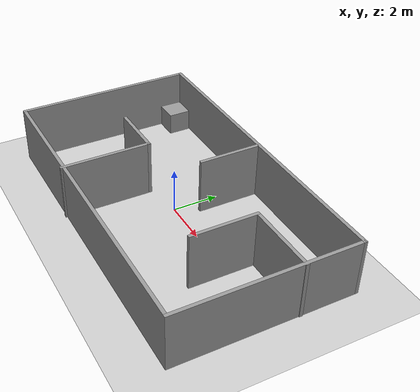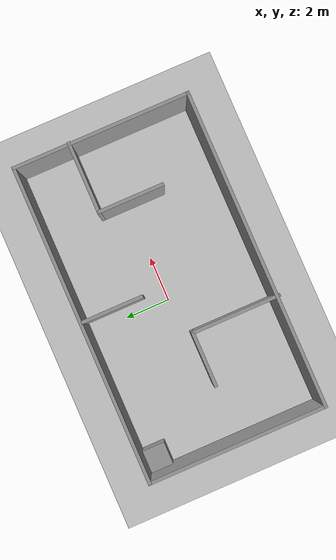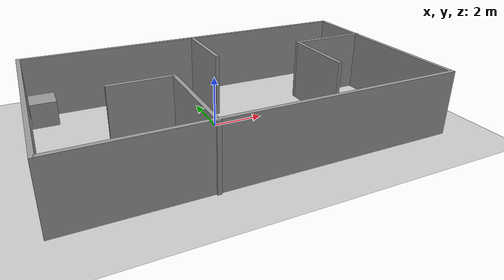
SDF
<sdf version="1.6">
 <world name="default">
  <light name="sun" type="directional">
   <pose>0 0 10 0 -0 0</pose>
   <diffuse>0.8 0.8 0.8 1</diffuse>
   <specular>0.1 0.1 0.1 1</specular>
   <attenuation>
    <range>1000</range>
    <constant>0.9</constant>
    <linear>0.01</linear>
    <quadratic>0.001</quadratic>
   </attenuation>
   <direction>-0.5 0.5 -1</direction>
  </light>
  <model name="ground_plane">
   <static>1</static>
   <link name="link">
    <collision name="collision">
     <geometry><plane><normal>0 0 1</normal><size>100 100</size></plane></geometry>
     <surface><friction><ode><mu>100</mu><mu2>50</mu2></ode></friction></surface>
    </collision>
    <visual name="visual">
     <cast_shadows>0</cast_shadows>
     <geometry><plane><normal>0 0 1</normal><size>100 100</size></plane></geometry>
     <material>
      <script><uri>file://media/materials/scripts/gazebo.material</uri><name>Gazebo/Grey</name></script>
     </material>
    </visual>
   </link>
  </model>
  <gravity>0 0 -9.8</gravity>
  <magnetic_field>6e-06 2.3e-05 -4.2e-05</magnetic_field>
  <atmosphere type="adiabatic"/>
  <physics name="default_physics" default="0" type="ode">
   <max_step_size>0.001</max_step_size>
   <real_time_factor>1</real_time_factor>
   <real_time_update_rate>1000</real_time_update_rate>
  </physics>
  <scene><ambient>0.4 0.4 0.4 1</ambient><background>0.7 0.7 0.7 1</background><shadows>1</shadows></scene>
  <spherical_coordinates>
   <surface_model>EARTH_WGS84</surface_model>
   <latitude_deg>0</latitude_deg>
   <longitude_deg>0</longitude_deg>
   <elevation>0</elevation>
   <heading_deg>0</heading_deg>
  </spherical_coordinates>
  <model name="210224">
   <pose>0.467729 -0.251015 0 0 -0 0</pose>
   <link name="Wall_0">
    <collision name="Wall_0_Collision">
     <geometry><box><size>14.25 0.15 2.5</size></box></geometry>
     <pose>0 0 1.25 0 -0 0</pose>
    </collision>
    <visual name="Wall_0_Visual">
     <pose>0 0 1.25 0 -0 0</pose>
     <geometry><box><size>14.25 0.15 2.5</size></box></geometry>
     <material>
      <script><uri>file://media/materials/scripts/gazebo.material</uri><name>Gazebo/Grey</name></script>
      <ambient>1 1 1 1</ambient>
     </material>
    </visual>
    <pose>-0.01596 -3.89091 0 0 -0 0</pose>
   </link>
   <link name="Wall_1">
    <collision name="Wall_1_Collision">
     <geometry><box><size>8 0.15 2.5</size></box></geometry>
     <pose>0 0 1.25 0 -0 0</pose>
    </collision>
    <visual name="Wall_1_Visual">
     <pose>0 0 1.25 0 -0 0</pose>
     <geometry><box><size>8 0.15 2.5</size></box></geometry>
     <material>
      <script><uri>file://media/materials/scripts/gazebo.material</uri><name>Gazebo/Grey</name></script>
      <ambient>1 1 1 1</ambient>
     </material>
    </visual>
    <pose>7.03404 0.034092 0 0 -0 1.5708</pose>
   </link>
   <link name="Wall_11">
    <collision name="Wall_11_Collision">
     <geometry><box><size>3.25 0.15 2.5</size></box></geometry>
     <pose>0 0 1.25 0 -0 0</pose>
    </collision>
    <visual name="Wall_11_Visual">
     <pose>0 0 1.25 0 -0 0</pose>
     <geometry><box><size>3.25 0.15 2.5</size></box></geometry>
     <material>
      <script><uri>file://media/materials/scripts/gazebo.material</uri><name>Gazebo/Grey</name></script>
      <ambient>1 1 1 1</ambient>
     </material>
    </visual>
    <pose>5.51596 1.45538 0 0 -0 3.14159</pose>
   </link>
   <link name="Wall_12">
    <collision name="Wall_12_Collision">
     <geometry><box><size>3 0.15 2.5</size></box></geometry>
     <pose>0 0 1.25 0 -0 0</pose>
    </collision>
    <visual name="Wall_12_Visual">
     <pose>0 0 1.25 0 -0 0</pose>
     <geometry><box><size>3 0.15 2.5</size></box></geometry>
     <material>
      <script><uri>file://media/materials/scripts/gazebo.material</uri><name>Gazebo/Grey</name></script>
      <ambient>1 1 1 1</ambient>
     </material>
    </visual>
    <pose>3.96596 0.030378 0 0 0 -1.5708</pose>
   </link>
   <link name="Wall_2">
    <collision name="Wall_2_Collision">
     <geometry><box><size>14.25 0.15 2.5</size></box></geometry>
     <pose>0 0 1.25 0 -0 0</pose>
    </collision>
    <visual name="Wall_2_Visual">
     <pose>0 0 1.25 0 -0 0</pose>
     <geometry><box><size>14.25 0.15 2.5</size></box></geometry>
     <material>
      <script><uri>file://media/materials/scripts/gazebo.material</uri><name>Gazebo/Grey</name></script>
      <ambient>1 1 1 1</ambient>
     </material>
    </visual>
    <pose>-0.01596 3.95909 0 0 -0 3.14159</pose>
   </link>
   <link name="Wall_24">
    <collision name="Wall_24_Collision">
     <geometry><box><size>4 0.15 2.5</size></box></geometry>
     <pose>0 0 1.25 0 -0 0</pose>
    </collision>
    <visual name="Wall_24_Visual">
     <pose>0 0 1.25 0 -0 0</pose>
     <geometry><box><size>4 0.15 2.5</size></box></geometry>
     <material>
      <script><uri>file://media/materials/scripts/gazebo.material</uri><name>Gazebo/Grey</name></script>
      <ambient>1 1 1 1</ambient>
     </material>
    </visual>
    <pose>-2.1417 -2.03409 0 0 -0 1.5708</pose>
   </link>
   <link name="Wall_25">
    <collision name="Wall_25_Collision">
     <geometry><box><size>2.5 0.15 2.5</size></box></geometry>
     <pose>0 0 1.25 0 -0 0</pose>
    </collision>
    <visual name="Wall_25_Visual">
     <pose>0 0 1.25 0 -0 0</pose>
     <geometry><box><size>2.5 0.15 2.5</size></box></geometry>
     <material>
      <script><uri>file://media/materials/scripts/gazebo.material</uri><name>Gazebo/Grey</name></script>
      <ambient>1 1 1 1</ambient>
     </material>
    </visual>
    <pose>-3.3167 -0.109092 0 0 -0 3.14159</pose>
   </link>
   <link name="Wall_4">
    <collision name="Wall_4_Collision">
     <geometry><box><size>8 0.15 2.5</size></box></geometry>
     <pose>0 0 1.25 0 -0 0</pose>
    </collision>
    <visual name="Wall_4_Visual">
     <pose>0 0 1.25 0 -0 0</pose>
     <geometry><box><size>8 0.15 2.5</size></box></geometry>
     <material>
      <script><uri>file://media/materials/scripts/gazebo.material</uri><name>Gazebo/Grey</name></script>
      <ambient>1 1 1 1</ambient>
     </material>
    </visual>
    <pose>-7.06596 0.034092 0 0 0 -1.5708</pose>
   </link>
   <link name="Wall_8">
    <collision name="Wall_8_Collision">
     <geometry><box><size>2.75 0.15 2.5</size></box></geometry>
     <pose>0 0 1.25 0 -0 0</pose>
    </collision>
    <visual name="Wall_8_Visual">
     <pose>0 0 1.25 0 -0 0</pose>
     <geometry><box><size>2.75 0.15 2.5</size></box></geometry>
     <material>
      <script><uri>file://media/materials/scripts/gazebo.material</uri><name>Gazebo/Grey</name></script>
      <ambient>1 1 1 1</ambient>
     </material>
    </visual>
    <pose>0.060798 2.54142 0 0 0 -1.5708</pose>
   </link>
   <static>1</static>
  </model>
  <model name="unit_box_0">
   <pose>-5.99798 3.10647 0.499995 -1e-05 0 0</pose>
   <link name="link">
    <inertial>
     <mass>1</mass>
     <inertia>
      <ixx>0.166667</ixx>
      <ixy>0</ixy>
      <ixz>0</ixz>
      <iyy>0.166667</iyy>
      <iyz>0</iyz>
      <izz>0.166667</izz>
     </inertia>
    </inertial>
    <collision name="collision"><geometry><box><size>1 1 1</size></box></geometry></collision>
    <visual name="visual">
     <geometry><box><size>1 1 1</size></box></geometry>
     <material>
      <script><name>Gazebo/Grey</name><uri>file://media/materials/scripts/gazebo.material</uri></script>
     </material>
    </visual>
   </link>
  </model>
 </world>
</sdf>
